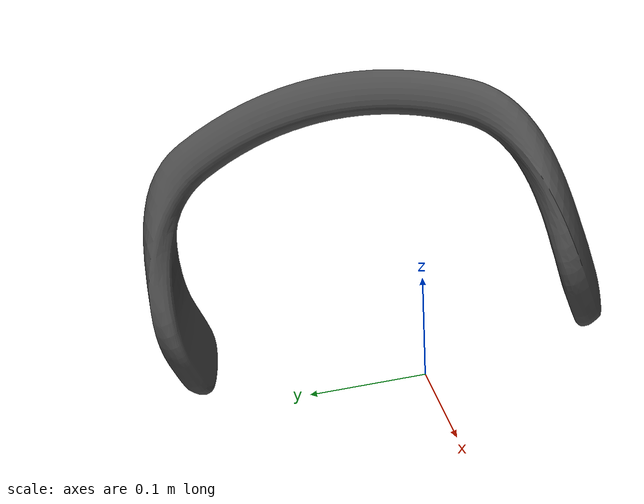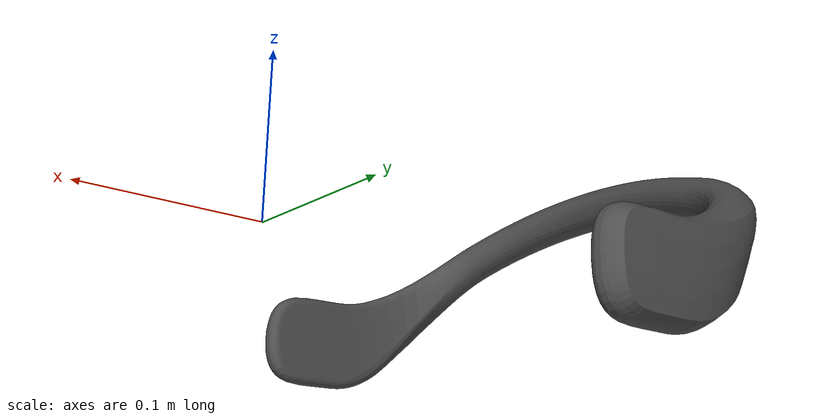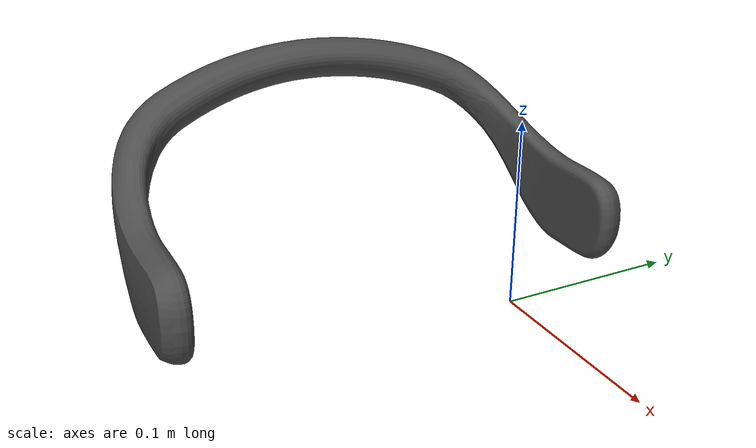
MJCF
<mujoco model="handle">
  <default>
    <default class="visual">
      <geom group="2" type="mesh" contype="0" conaffinity="0"/>
    </default>
    <default class="collision">
      <geom group="3" type="mesh"/>
    </default>
  </default>
  <asset>
    <material name="mtl_handle" specular="0.20000000000000004" shininess="1.0" rgba="0.29803922 0.29803922 0.29803922 1.0"/>
    <mesh file="handle.obj"/>
  </asset>
  <worldbody>
    <body name="handle">
      <geom material="mtl_handle" mesh="handle" class="visual"/>
      <geom mesh="handle" class="collision"/>
    </body>
  </worldbody>
</mujoco>
